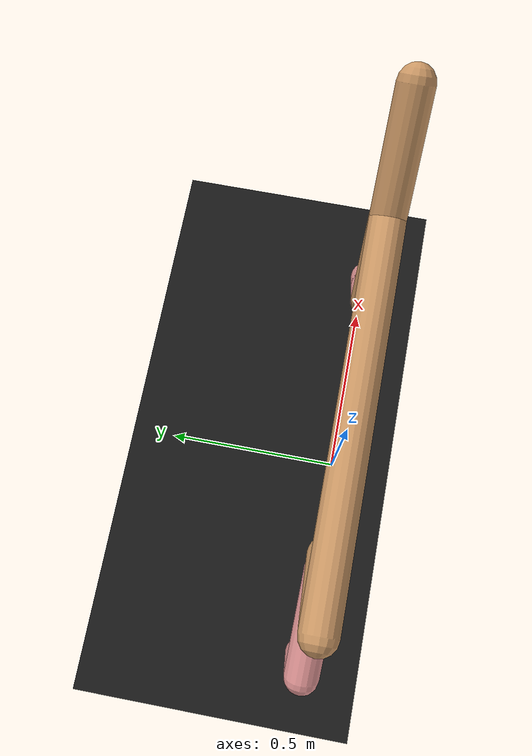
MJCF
<mujoco model="cheetah">
    <compiler angle="radian" coordinate="local" inertiafromgeom="true" settotalmass="14"/>
    <default>
        <joint armature=".1" damping=".01" limited="true" solimplimit="0 .8 .03" solreflimit=".02 1" stiffness="8"/>
        <geom conaffinity="0" condim="3" contype="1" friction=".4 .1 .1" rgba="0.8 0.6 .4 1" solimp="0.0 0.8 0.01" solref="0.02 1"/>
        <motor ctrllimited="true" ctrlrange="-1 1"/>
    </default>

    <size nstack="300000" nuser_geom="1"/>
    <option gravity="0 0 -9.81" timestep="0.01"/>

    <asset>
        <texture builtin="gradient" height="100" rgb1="1 1 1" rgb2="0 0 0" type="skybox" width="100"/>
        <texture builtin="flat" height="1278" mark="cross" markrgb="1 1 1" name="texgeom" random="0.01" rgb1="0.8 0.6 0.4" rgb2="0.8 0.6 0.4" type="cube" width="127"/>
        <texture builtin="checker" height="100" name="texplane" rgb1="0 0 0" rgb2="0.8 0.8 0.8" type="2d" width="100"/>
        <material name="MatPlane" reflectance="0.5" shininess="1" specular="1" texrepeat="60 60" texture="texplane"/>
        <material name="floor_mat" reflectance="0.5" shininess="1" specular="1"/>
        <material name="geom" texture="texgeom" texuniform="true"/>
    </asset>

    <worldbody>
        <light cutoff="100" diffuse="1 1 1" dir="-0 0 -1.3" directional="true" exponent="1" pos="0 0 1.3" specular=".1 .1 .1" castshadow="true"/>
        <!-- geom conaffinity="1" condim="3" material="MatPlane" name="floor" pos="0 0 0" rgba="0.8 0.9 0.8 1" size="40 40 40" type="plane"/-->
        <geom conaffinity="1" condim="3" material="floor_mat" name="floor" pos="0 0 0" rgba="0.1 0.1 0.1 1" size="40 40 40" type="plane"/>
        <body name="torso" pos="0 0 .7">
              <camera name="track" mode="trackcom" pos="0 -3 0.3" xyaxes="1 0 0 0 0 1"/>

              <joint armature="0" axis="1 0 0" damping="0" limited="false" name="rootx" pos="0 0 0" stiffness="0" type="slide"/>
              <joint armature="0" axis="0 0 1" damping="0" limited="false" name="rootz" pos="0 0 0" stiffness="0" type="slide"/>
              <joint armature="0" axis="0 1 0" damping="0" limited="false" name="rooty" pos="0 0 0" stiffness="0" type="hinge"/>
              <geom fromto="-.5 0 0 .5 0 0" name="torso" size="0.046" type="capsule"/>
              <geom axisangle="0 1 0 .87" name="head" pos=".6 0 .1" size="0.046 .15" type="capsule"/>

              <body name="bthigh" pos="-.5 0 0">
                  <joint axis="0 1 0" damping="6" name="bthigh" pos="0 0 0" range="-.52 1.05" stiffness="240" type="hinge"/>
                  <geom axisangle="0 1 0 -3.8" name="bthigh" pos=".1 0 -.13" size="0.046 .145" type="capsule"/>
                  <body name="bshin" pos=".16 0 -.25">
                      <joint axis="0 1 0" damping="4.5" name="bshin" pos="0 0 0" range="-.785 .785" stiffness="180" type="hinge"/>
                      <geom axisangle="0 1 0 -2.03" name="bshin" pos="-.14 0 -.07" rgba="0.9 0.6 0.6 1" size="0.046 .15" type="capsule"/>
                      <body name="bfoot" pos="-.28 0 -.14">
                          <joint axis="0 1 0" damping="3" name="bfoot" pos="0 0 0" range="-.4 .785" stiffness="120" type="hinge"/>
                          <geom axisangle="0 1 0 -.27" name="bfoot" pos=".03 0 -.097" rgba="0.9 0.6 0.6 1" size="0.046 .094" type="capsule"/>
                          <site name='b-foot' type='sphere' pos='0.1 0 -0.2' rgba='0.5 0.5 0.5 0' size='0.1'/>
                      </body>
                  </body>
              </body>

              <body name="fthigh" pos=".5 0 0">
                  <joint axis="0 1 0" damping="4.5" name="fthigh" pos="0 0 0" range="-1 .7" stiffness="180" type="hinge"/>
                  <geom axisangle="0 1 0 .52" name="fthigh" pos="-.07 0 -.12" size="0.046 .133" type="capsule"/>
                  <body name="fshin" pos="-.14 0 -.24">
                      <joint axis="0 1 0" damping="3" name="fshin" pos="0 0 0" range="-1.2 .87" stiffness="120" type="hinge"/>
                      <geom axisangle="0 1 0 -.6" name="fshin" pos=".065 0 -.09" rgba="0.9 0.6 0.6 1" size="0.046 .106" type="capsule"/>
                      <body name="ffoot" pos=".13 0 -.18">
                          <joint axis="0 1 0" damping="1.5" name="ffoot" pos="0 0 0" range="-.5 .5" stiffness="60" type="hinge"/>
                          <geom axisangle="0 1 0 -.6" name="ffoot" pos=".045 0 -.07" rgba="0.9 0.6 0.6 1" size="0.046 .07" type="capsule"/>
                          <site name='f-foot' type='sphere' pos='0.1 0 -0.2' rgba='0.5 0.5 0.5 0' size='0.1'/>
                      </body>
                  </body>
              </body>

          </body>
      </worldbody>
      <actuator>
            <motor gear="120" joint="bthigh" name="bthigh"/>
            <motor gear="90" joint="bshin" name="bshin"/>
            <motor gear="60" joint="bfoot" name="bfoot"/>
            <motor gear="120" joint="fthigh" name="fthigh"/>
            <motor gear="60" joint="fshin" name="fshin"/>
            <motor gear="30" joint="ffoot" name="ffoot"/>
      </actuator>

      <sensor>
          <jointpos name='torso-rot' joint='rooty'/>

          <jointpos name='f-thigh' joint='fthigh'/>
          <jointpos name='f-shin' joint='fshin'/>
          <jointpos name='f-foot' joint='ffoot'/>
          <jointpos name='b-thigh' joint='bthigh'/>
          <jointpos name='b-shin' joint='bshin'/>
          <jointpos name='b-foot' joint='bfoot'/>

          <jointvel name='f-vel-thigh' joint='fthigh'/>
          <jointvel name='f-vel-shin' joint='fshin'/>
          <jointvel name='f-vel-foot' joint='ffoot'/>
          <jointvel name='b-vel-thigh' joint='bthigh'/>
          <jointvel name='b-vel-shin' joint='bshin'/>
          <jointvel name='b-vel-foot' joint='bfoot'/>

          <jointpos name='for-vel' joint='rootx'/>

          <jointvel name='height' joint='rootz' />
      </sensor>

</mujoco>
